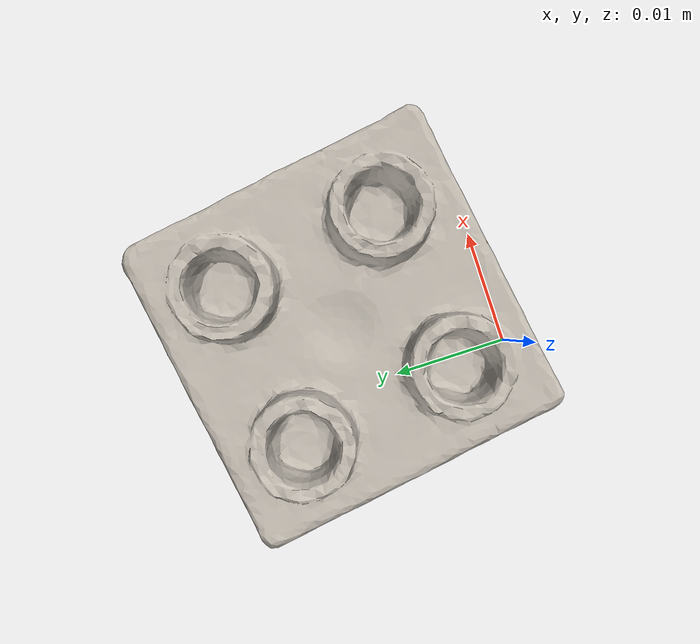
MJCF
<mujoco model="bread">
  <asset>
    <mesh file="nontextured.stl" name="obj_mesh" scale="0.8 0.8 0.8"/>
    <texture file="../../../../../textures/bread.png" type="2d" name="tex-bread" />
    <material name="bread" reflectance="0.7" texrepeat="15 15" texture="tex-bread" texuniform="true"/>
  </asset>
  <worldbody>
    <body>
      <body name="collision">
        <geom pos="0.028347499999999998 0.06658700000000001 -0.02129" mesh="obj_mesh" type="mesh" solimp="0.998 0.998 0.001" solref="0.001 1" density="50" friction="0.95 0.3 0.1"  material="bread" group="1" condim="4"/>
      </body>
      <body name="visual">
        <geom pos="0.028347499999999998 0.06658700000000001 -0.02129" mesh="obj_mesh" type="mesh" material="bread"  conaffinity="0" contype="0"  group="0" mass="0.0001"/>
        <geom pos="0.028347499999999998 0.06658700000000001 -0.02129" mesh="obj_mesh" type="mesh" material="bread"  conaffinity="0" contype="0"  group="1" mass="0.0001"/>
      </body>
      <site rgba="0 0 0 0" size="0.005" pos="0 0 -0.021710999999999998" name="bottom_site"/>
      <site rgba="0 0 0 0" size="0.005" pos="0 0 0.021710999999999998" name="top_site"/>
      <site rgba="0 0 0 0" size="0.005" pos="0.0183025 0.018342 0.021710999999999998" name="horizontal_radius_site"/>
    </body>
  </worldbody>
</mujoco>
